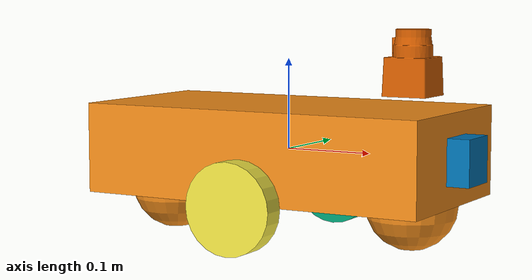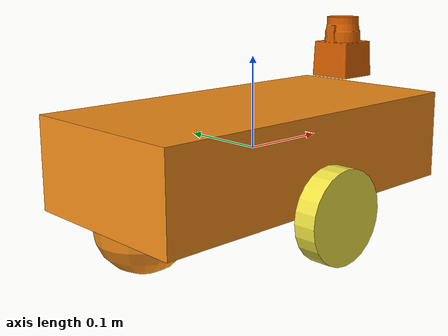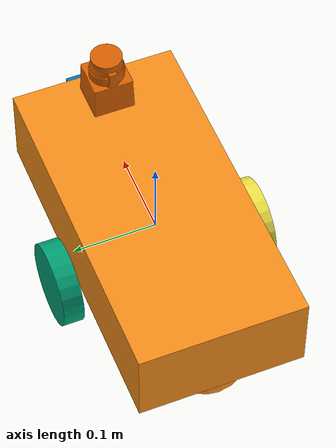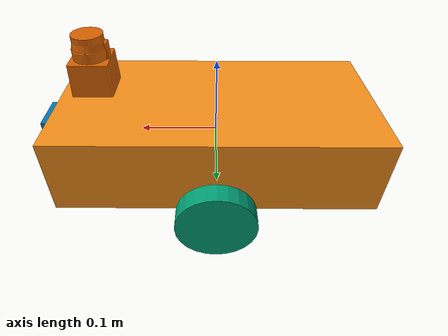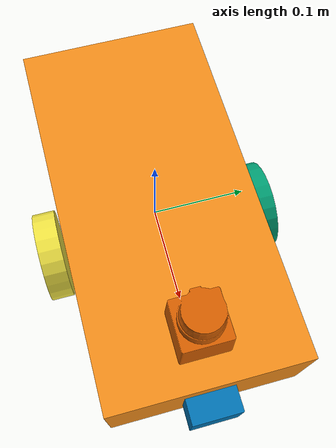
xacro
<?xml version='1.0'?>

<robot name="my_robot" xmlns:xacro="http://www.ros.org/wiki/xacro">
  <xacro:include filename="$(find my_robot)/urdf/my_robot.gazebo" />

  <link name="robot_footprint"></link>

  <joint name="robot_footprint_joint" type="fixed">
    <origin xyz="0 0 0" rpy="0 0 0" />
    <parent link="robot_footprint"/>
    <child link="chassis" />
  </joint>

  <link name='chassis'>
    <pose>0 0 0.1 0 0 0</pose>

    <inertial>
      <mass value="15.0"/>
      <origin xyz="0.0 0 0" rpy=" 0 0 0"/>
      <inertia
          ixx="0.1" ixy="0" ixz="0"
          iyy="0.1" iyz="0"
          izz="0.1"
      />
    </inertial>

    <collision name='collision'>
      <origin xyz="0 0 0" rpy=" 0 0 0"/>
      <geometry>
        <box size=".4 .2 .1"/>
      </geometry>
    </collision>

    <visual name='chassis_visual'>
      <origin xyz="0 0 0" rpy=" 0 0 0"/>
      <geometry>
        <box size=".4 .2 .1"/>
      </geometry>
    </visual>

    <collision name='back_caster_collision'>
      <origin xyz="-0.15 0 -0.05" rpy=" 0 0 0"/>
      <geometry>
        <sphere radius="0.0499"/>
      </geometry>
    </collision>

    <visual name='back_caster_visual'>
      <origin xyz="-0.15 0 -0.05" rpy=" 0 0 0"/>
      <geometry>
        <sphere radius="0.05"/>
      </geometry>
    </visual>

    <collision name='front_caster_collision'>
      <origin xyz="0.15 0 -0.05" rpy=" 0 0 0"/>
      <geometry>
        <sphere radius="0.0499"/>
      </geometry>
    </collision>

    <visual name='front_caster_visual'>
      <origin xyz="0.15 0 -0.05" rpy=" 0 0 0"/>
      <geometry>
        <sphere radius="0.05"/>
      </geometry>
    </visual>

  </link>

  <link name="front_right_wheel">
    <inertial>
      <mass value="5.0"/>
      <origin xyz="0 0 0" rpy=" 0 1.5707 1.5707"/>
      <inertia
          ixx="0.1" ixy="0" ixz="0"
          iyy="0.1" iyz="0"
          izz="0.1"
      />
    </inertial>

    <collision name='collision'>
      <origin xyz="0 0 0" rpy=" 0 1.5707 1.5707"/>
      <geometry>
        <cylinder radius="0.05" length="0.025"/>
      </geometry>
    </collision>

    <visual name='wheel_visual'>
      <origin xyz="0 0 0" rpy=" 0 1.5707 1.5707"/>
      <geometry>
        <cylinder radius="0.05" length="0.025"/>
      </geometry>
    </visual>
  </link>

  <link name="front_left_wheel">
    <inertial>
      <mass value="5.0"/>
      <origin xyz="0 0 0" rpy=" 0 1.5707 1.5707"/>
      <inertia
          ixx="0.1" ixy="0" ixz="0"
          iyy="0.1" iyz="0"
          izz="0.1"
      />
    </inertial>

    <collision name='collision'>
      <origin xyz="0 0 0" rpy=" 0 1.5707 1.5707"/>
      <geometry>
        <cylinder radius="0.05" length="0.025"/>
      </geometry>
    </collision>

    <visual name='wheel_visual'>
      <origin xyz="0 0 0" rpy=" 0 1.5707 1.5707"/>
      <geometry>
        <cylinder radius="0.05" length="0.025"/>
      </geometry>
    </visual>
  </link>

  <gazebo reference="chassis">
    <material>
      Gazebo/Orange
    </material>
  </gazebo>

  <joint type="continuous" name="front_right_wheel_hinge">
    <origin xyz="0 0.12 -0.05" rpy="0 0 0"/>
    <child link="front_right_wheel"/>
    <parent link="chassis"/>
    <axis xyz="0 1 0" rpy="0 0 0"/>
    <limit effort="10000" velocity="1000"/>
    <dynamics damping="1.0" friction="1.0"/>
  </joint>

    <joint type="continuous" name="front_left_wheel_hinge">
    <origin xyz="0 -0.12 -0.05" rpy="0 0 0"/>
    <child link="front_left_wheel"/>
    <parent link="chassis"/>
    <axis xyz="0 1 0" rpy="0 0 0"/>
    <limit effort="10000" velocity="1000"/>
    <dynamics damping="1.0" friction="1.0"/>
  </joint>

  <!-- Camera link-->
  <link name="camera">
    <inertial>
      <mass value="0.1"/>
      <origin xyz=".05 .05 .05" rpy="0 0 0"/>
      <inertia
          ixx="1e-6" ixy="0" ixz="0"
          iyy="1e-6" iyz="0"
          izz="1e-6"
      />
    </inertial>

    <collision name='collision'>
      <origin xyz="0 0 0" rpy=" 0 0 0"/>
      <geometry>
        <box size=".05 .05 .05"/>
      </geometry>
    </collision>

    <visual name='camera_visual'>
      <origin xyz="0 0 0" rpy=" 0 0 0"/>
      <geometry>
        <box size=".05 .05 .05"/>
      </geometry>
    </visual>
  </link>

  <!-- Camera joint -->
  <joint type="fixed" name="camera_joint">
    <origin xyz="0.2 0 0" rpy="0 0 0"/>
    <child link="camera"/>
    <parent link="chassis"/>
    <axis xyz="0 1 0" rpy="0 0 0"/>
    <limit effort="10000" velocity="1000"/>
    <dynamics damping="1.0" friction="1.0"/>
  </joint>

  <!-- Hokuyo lidar sensor -->
  <link name="hokuyo">
    <inertial>
      <mass value="1e-5"/>
      <origin xyz="0 0 0" rpy=" 0 0 0"/>
      <inertia
          ixx="1e-6" ixy="0" ixz="0"
          iyy="1e-6" iyz="0"
          izz="1e-6"
      />
    </inertial>

    <collision name='collision'>
      <origin xyz="0 0 0" rpy=" 0 0 0"/>
      <geometry>
        <mesh filename="package://my_robot/meshes/hokuyo.dae"/>
      </geometry>
    </collision>

    <visual name='hokuyo_visual'>
      <origin xyz="0 0 0" rpy=" 0 0 0"/>
      <geometry>
        <mesh filename="package://my_robot/meshes/hokuyo.dae"/>
      </geometry>
    </visual>
  </link>

  <!-- hokuyo joint -->
  <joint type="fixed" name="hokuyo_joint">
    <origin xyz="0.15 0 0.1" rpy="0 0 0"/>
    <child link="hokuyo"/>
    <parent link="chassis"/>
    <axis xyz="0 1 0" rpy="0 0 0"/>
    <limit effort="10000" velocity="1000"/>
    <dynamics damping="1.0" friction="1.0"/>
  </joint>

</robot>
